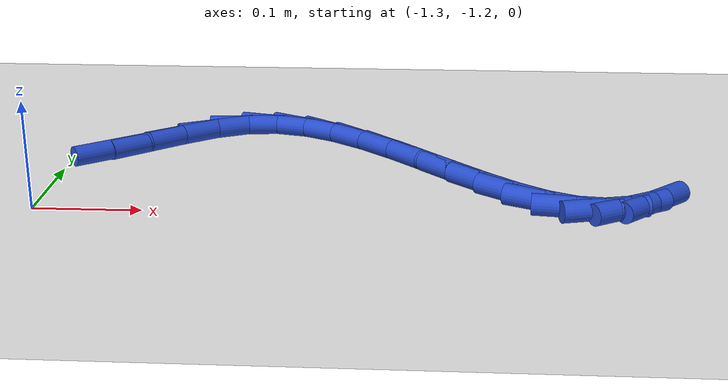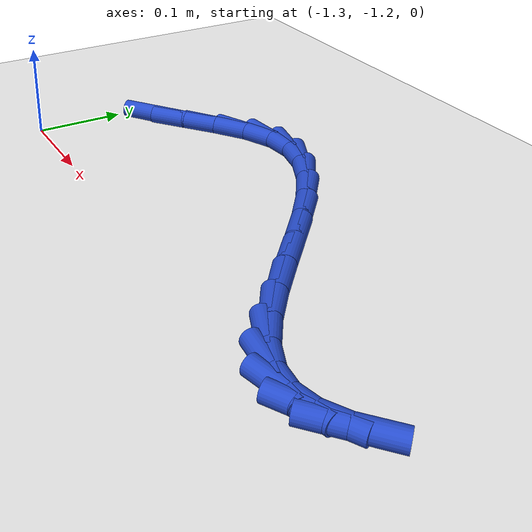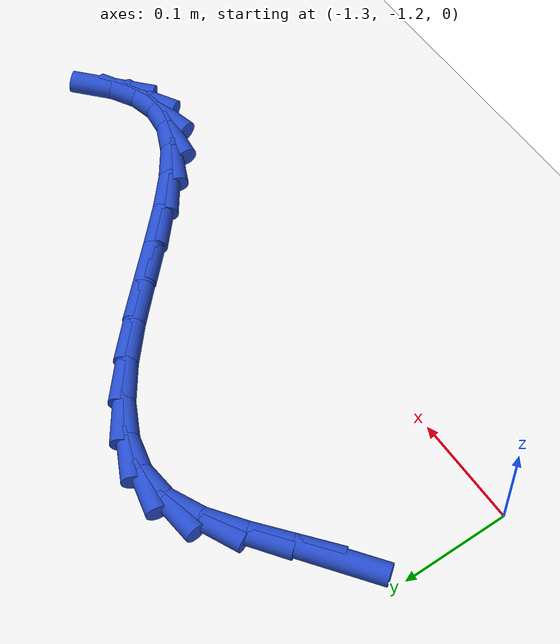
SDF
<sdf version="1.6">
 <world name="default">
  <model name="ground_plane">
   <static>1</static>
   <link name="link">
    <collision name="collision">
     <geometry><plane><normal>0 0 1</normal><size>100 100</size></plane></geometry>
     <surface><friction><ode><mu>100</mu><mu2>50</mu2></ode></friction></surface>
    </collision>
    <visual name="visual">
     <cast_shadows>0</cast_shadows>
     <geometry><plane><normal>0 0 1</normal><size>100 100</size></plane></geometry>
     <material>
      <script><uri>file://media/materials/scripts/gazebo.material</uri><name>Gazebo/WhiteGlow</name></script>
     </material>
    </visual>
   </link>
  </model>
  <model name="line">
   <link name="link_172">
    <pose>-1.2601295544327336 -1.0672625548798589 0.01 0 1.57 0.6334158134036258</pose>
    <collision name="collision">
     <geometry><cylinder><radius>0.01</radius><length>0.08</length></cylinder></geometry>
    </collision>
    <visual name="visual">
     <material>
      <script><name>Gazebo/Blue</name><uri>file://media/materials/scripts/gazebo.material</uri></script>
     </material>
     <geometry><cylinder><radius>0.01</radius><length>0.08</length></cylinder></geometry>
    </visual>
   </link>
   <link name="link_173">
    <pose>-1.229658102135802 -1.0448855544078601 0.01 0 1.57 0.6817827701320905</pose>
    <collision name="collision">
     <geometry><cylinder><radius>0.01</radius><length>0.08</length></cylinder></geometry>
    </collision>
    <visual name="visual">
     <material>
      <script><name>Gazebo/Blue</name><uri>file://media/materials/scripts/gazebo.material</uri></script>
     </material>
     <geometry><cylinder><radius>0.01</radius><length>0.08</length></cylinder></geometry>
    </visual>
   </link>
   <link name="link_174">
    <pose>-1.1986561554351083 -1.0197239336798078 0.01 0 1.57 0.6222276173946465</pose>
    <collision name="collision">
     <geometry><cylinder><radius>0.01</radius><length>0.08</length></cylinder></geometry>
    </collision>
    <visual name="visual">
     <material>
      <script><name>Gazebo/Blue</name><uri>file://media/materials/scripts/gazebo.material</uri></script>
     </material>
     <geometry><cylinder><radius>0.01</radius><length>0.08</length></cylinder></geometry>
    </visual>
   </link>
   <link name="link_175">
    <pose>-1.1672980410461973 -0.997231469201054 0.01 0 1.57 0.42767159266426336</pose>
    <collision name="collision">
     <geometry><cylinder><radius>0.01</radius><length>0.08</length></cylinder></geometry>
    </collision>
    <visual name="visual">
     <material>
      <script><name>Gazebo/Blue</name><uri>file://media/materials/scripts/gazebo.material</uri></script>
     </material>
     <geometry><cylinder><radius>0.01</radius><length>0.08</length></cylinder></geometry>
    </visual>
   </link>
   <link name="link_176">
    <pose>-1.1357580363431892 -0.9828553497356107 0.01 0 1.57 0.0882061887247519</pose>
    <collision name="collision">
     <geometry><cylinder><radius>0.01</radius><length>0.08</length></cylinder></geometry>
    </collision>
    <visual name="visual">
     <material>
      <script><name>Gazebo/Blue</name><uri>file://media/materials/scripts/gazebo.material</uri></script>
     </material>
     <geometry><cylinder><radius>0.01</radius><length>0.08</length></cylinder></geometry>
    </visual>
   </link>
   <link name="link_177">
    <pose>-1.1041955987685919 -0.9800641047153541 0.01 0 1.57 -0.2346299146068131</pose>
    <collision name="collision">
     <geometry><cylinder><radius>0.01</radius><length>0.08</length></cylinder></geometry>
    </collision>
    <visual name="visual">
     <material>
      <script><name>Gazebo/Blue</name><uri>file://media/materials/scripts/gazebo.material</uri></script>
     </material>
     <geometry><cylinder><radius>0.01</radius><length>0.08</length></cylinder></geometry>
    </visual>
   </link>
   <link name="link_178">
    <pose>-1.0727346689075774 -0.9875842874912057 0.01 0 1.57 -0.4698304160548107</pose>
    <collision name="collision">
     <geometry><cylinder><radius>0.01</radius><length>0.08</length></cylinder></geometry>
    </collision>
    <visual name="visual">
     <material>
      <script><name>Gazebo/Blue</name><uri>file://media/materials/scripts/gazebo.material</uri></script>
     </material>
     <geometry><cylinder><radius>0.01</radius><length>0.08</length></cylinder></geometry>
    </visual>
   </link>
   <link name="link_179">
    <pose>-1.0414939772139913 -1.0034468291102376 0.01 0 1.57 -0.6237372148305383</pose>
    <collision name="collision">
     <geometry><cylinder><radius>0.01</radius><length>0.08</length></cylinder></geometry>
    </collision>
    <visual name="visual">
     <material>
      <script><name>Gazebo/Blue</name><uri>file://media/materials/scripts/gazebo.material</uri></script>
     </material>
     <geometry><cylinder><radius>0.01</radius><length>0.08</length></cylinder></geometry>
    </visual>
   </link>
   <link name="link_180">
    <pose>-1.0105922541416816 -1.0256826606195195 0.01 0 1.57 -0.7188584895400304</pose>
    <collision name="collision">
     <geometry><cylinder><radius>0.01</radius><length>0.08</length></cylinder></geometry>
    </collision>
    <visual name="visual">
     <material>
      <script><name>Gazebo/Blue</name><uri>file://media/materials/scripts/gazebo.material</uri></script>
     </material>
     <geometry><cylinder><radius>0.01</radius><length>0.08</length></cylinder></geometry>
    </visual>
   </link>
   <link name="link_181">
    <pose>-0.9801482301444946 -1.0523227130661237 0.01 0 1.57 -0.7719556000566008</pose>
    <collision name="collision">
     <geometry><cylinder><radius>0.01</radius><length>0.08</length></cylinder></geometry>
    </collision>
    <visual name="visual">
     <material>
      <script><name>Gazebo/Blue</name><uri>file://media/materials/scripts/gazebo.material</uri></script>
     </material>
     <geometry><cylinder><radius>0.01</radius><length>0.08</length></cylinder></geometry>
    </visual>
   </link>
   <link name="link_182">
    <pose>-0.9502806356762762 -1.0813979174971216 0.01 0 1.57 -0.7916803085673546</pose>
    <collision name="collision">
     <geometry><cylinder><radius>0.01</radius><length>0.08</length></cylinder></geometry>
    </collision>
    <visual name="visual">
     <material>
      <script><name>Gazebo/Blue</name><uri>file://media/materials/scripts/gazebo.material</uri></script>
     </material>
     <geometry><cylinder><radius>0.01</radius><length>0.08</length></cylinder></geometry>
    </visual>
   </link>
   <link name="link_183">
    <pose>-0.9211082011908728 -1.1109392049595834 0.01 0 1.57 -0.779719848192052</pose>
    <collision name="collision">
     <geometry><cylinder><radius>0.01</radius><length>0.08</length></cylinder></geometry>
    </collision>
    <visual name="visual">
     <material>
      <script><name>Gazebo/Blue</name><uri>file://media/materials/scripts/gazebo.material</uri></script>
     </material>
     <geometry><cylinder><radius>0.01</radius><length>0.08</length></cylinder></geometry>
    </visual>
   </link>
   <link name="link_184">
    <pose>-0.8927496571421303 -1.138977506500582 0.01 0 1.57 -0.7304514665950261</pose>
    <collision name="collision">
     <geometry><cylinder><radius>0.01</radius><length>0.08</length></cylinder></geometry>
    </collision>
    <visual name="visual">
     <material>
      <script><name>Gazebo/Blue</name><uri>file://media/materials/scripts/gazebo.material</uri></script>
     </material>
     <geometry><cylinder><radius>0.01</radius><length>0.08</length></cylinder></geometry>
    </visual>
   </link>
   <link name="link_185">
    <pose>-0.8653237339838966 -1.1635437531671864 0.01 0 1.57 -0.6273966179450772</pose>
    <collision name="collision">
     <geometry><cylinder><radius>0.01</radius><length>0.08</length></cylinder></geometry>
    </collision>
    <visual name="visual">
     <material>
      <script><name>Gazebo/Blue</name><uri>file://media/materials/scripts/gazebo.material</uri></script>
     </material>
     <geometry><cylinder><radius>0.01</radius><length>0.08</length></cylinder></geometry>
    </visual>
   </link>
   <link name="link_186">
    <pose>-0.8389491621700176 -1.1826688760064696 0.01 0 1.57 -0.43509033805459113</pose>
    <collision name="collision">
     <geometry><cylinder><radius>0.01</radius><length>0.08</length></cylinder></geometry>
    </collision>
    <visual name="visual">
     <material>
      <script><name>Gazebo/Blue</name><uri>file://media/materials/scripts/gazebo.material</uri></script>
     </material>
     <geometry><cylinder><radius>0.01</radius><length>0.08</length></cylinder></geometry>
    </visual>
   </link>
   <link name="link_187">
    <pose>-0.8137446688985742 -1.1943838362396482 0.01 0 1.57 -0.11947057238342582</pose>
    <collision name="collision">
     <geometry><cylinder><radius>0.01</radius><length>0.08</length></cylinder></geometry>
    </collision>
    <visual name="visual">
     <material>
      <script><name>Gazebo/Blue</name><uri>file://media/materials/scripts/gazebo.material</uri></script>
     </material>
     <geometry><cylinder><radius>0.01</radius><length>0.08</length></cylinder></geometry>
    </visual>
   </link>
   <link name="link_188">
    <pose>-0.7897704831523147 -1.1972617513494566 0.01 0 1.57 0.23416093161206403</pose>
    <collision name="collision">
     <geometry><cylinder><radius>0.01</radius><length>0.08</length></cylinder></geometry>
    </collision>
    <visual name="visual">
     <material>
      <script><name>Gazebo/Blue</name><uri>file://media/materials/scripts/gazebo.material</uri></script>
     </material>
     <geometry><cylinder><radius>0.01</radius><length>0.08</length></cylinder></geometry>
    </visual>
   </link>
   <link name="link_189">
    <pose>-0.7668790665762518 -1.1918013080425076 0.01 0 1.57 0.5293668555424463</pose>
    <collision name="collision">
     <geometry><cylinder><radius>0.01</radius><length>0.08</length></cylinder></geometry>
    </collision>
    <visual name="visual">
     <material>
      <script><name>Gazebo/Blue</name><uri>file://media/materials/scripts/gazebo.material</uri></script>
     </material>
     <geometry><cylinder><radius>0.01</radius><length>0.08</length></cylinder></geometry>
    </visual>
   </link>
   <link name="link_190">
    <pose>-0.7448767750481237 -1.1789284971795106 0.01 0 1.57 0.7375415742284245</pose>
    <collision name="collision">
     <geometry><cylinder><radius>0.01</radius><length>0.08</length></cylinder></geometry>
    </collision>
    <visual name="visual">
     <material>
      <script><name>Gazebo/Blue</name><uri>file://media/materials/scripts/gazebo.material</uri></script>
     </material>
     <geometry><cylinder><radius>0.01</radius><length>0.08</length></cylinder></geometry>
    </visual>
   </link>
  </model>
 </world>
</sdf>
